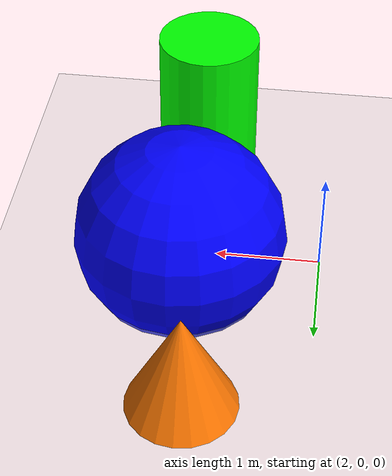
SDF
<?xml version="1.0" ?>
<sdf version="1.7">
    <world name="empty_world">

        <light type="directional" name="sun">
            <cast_shadows>true</cast_shadows>
            <pose>0 0 10 0 0 0</pose>
            <diffuse>0.8 0.8 0.8 1</diffuse>
            <specular>0.2 0.2 0.2 1</specular>
            <attenuation>
                <range>1000</range>
                <constant>0.9</constant>
                <linear>0.01</linear>
                <quadratic>0.001</quadratic>
            </attenuation>
            <direction>-0.5 0.1 -0.9</direction>
        </light>

        <model name="ground_plane">
            <static>true</static>
           <link name="link">
                <collision name="collision">
                    <geometry>
                        <plane>
                            <normal>0 0 1</normal>
                        </plane>
                    </geometry>
                </collision>
                <visual name="visual">
                    <geometry>
                        <plane>
                            <normal>0 0 1</normal>
                            <size>100 100</size>
                        </plane>
                    </geometry>
                    <material>
                        <ambient>0.8 0.8 0.8 1</ambient>
                        <diffuse>0.8 0.8 0.8 1</diffuse>
                        <specular>0.8 0.8 0.8 1</specular>
                    </material>
                </visual>
            </link>
        </model>

    <model name="cylinder">
      <pose>3.26 -1.5 0.5 0 0 0</pose>
      <link name="cylinder_link">
        <inertial>
          <inertia>
            <ixx>0.1458</ixx>
            <ixy>0</ixy>
            <ixz>0</ixz>
            <iyy>0.1458</iyy>
            <iyz>0</iyz>
            <izz>0.125</izz>
          </inertia>
          <mass>1.0</mass>
        </inertial>
        <collision name="cylinder_collision">
          <geometry>
            <cylinder>
              <radius>0.5</radius>
              <length>2.0</length>
            </cylinder>
          </geometry>
        </collision>

        <visual name="cylinder_visual">
          <geometry>
            <cylinder>
              <radius>0.5</radius>
              <length>2.0</length>
            </cylinder>
          </geometry>
          <material>
            <ambient>0 1 0 1</ambient>
            <diffuse>0 1 0 1</diffuse>
            <specular>0 1 0 1</specular>
          </material>
        </visual>
      </link>
    </model>

    <model name="sphere">
      <pose>3.31 0.29 0.5 0 0 0</pose>
      <link name="sphere_link">
        <inertial>
          <inertia>
            <ixx>0.1</ixx>
            <ixy>0</ixy>
            <ixz>0</ixz>
            <iyy>0.1</iyy>
            <iyz>0</iyz>
            <izz>0.1</izz>
          </inertia>
          <mass>1.0</mass>
        </inertial>
        <collision name="sphere_collision">
          <geometry>
            <sphere>
              <radius>1</radius>
            </sphere>
          </geometry>
        </collision>

        <visual name="sphere_visual">
          <geometry>
            <sphere>
              <radius>1</radius>
            </sphere>
          </geometry>
          <material>
            <ambient>0 0 1 1</ambient>
            <diffuse>0 0 1 1</diffuse>
            <specular>0 0 1 1</specular>
          </material>
        </visual>
      </link>
    </model>

    <model name="cone">
      <pose>3.08 1.93 0.5 0 0 0</pose>
      <link name="cone_link">
        <inertial auto="true">
          <density>1</density>
        </inertial>
        <collision name="cone_collision">
          <geometry>
            <cone>
              <radius>0.5</radius>
              <length>1.0</length>
            </cone>
          </geometry>
        </collision>

        <visual name="cone_visual">
          <geometry>
            <cone>
              <radius>0.5</radius>
              <length>1.0</length>
            </cone>
          </geometry>
          <material>
            <ambient>1 0.47 0 1</ambient>
            <diffuse>1 0.47 0 1</diffuse>
            <specular>1 0.47 0 1</specular>
          </material>
        </visual>
      </link>
    </model>

    </world>
</sdf>
